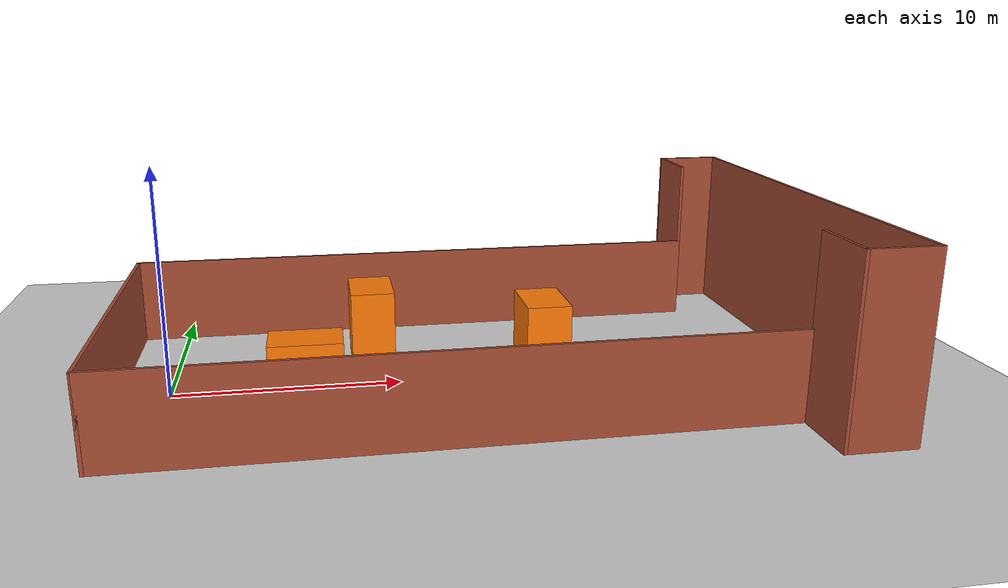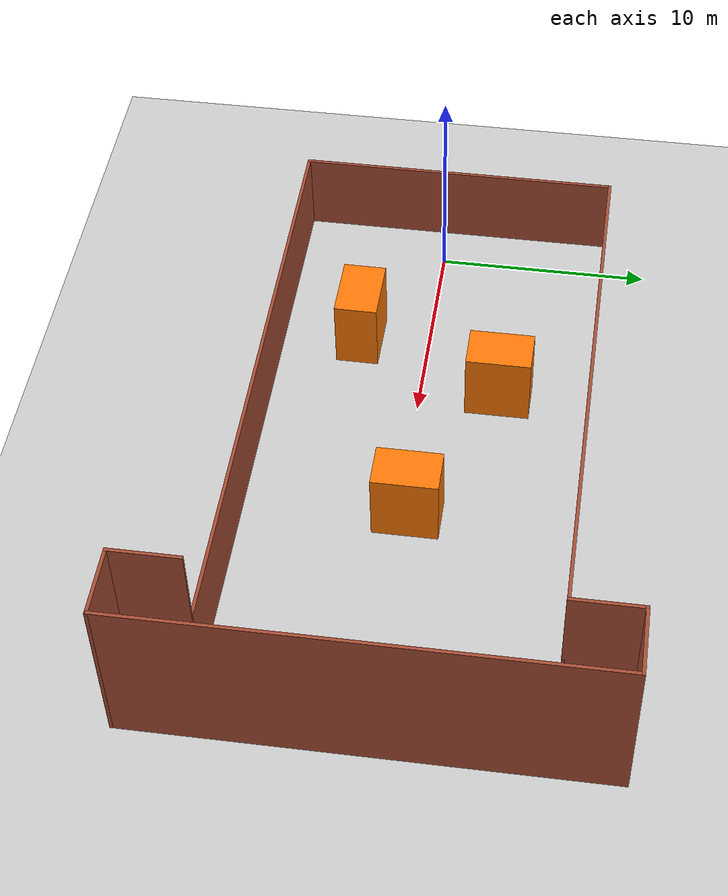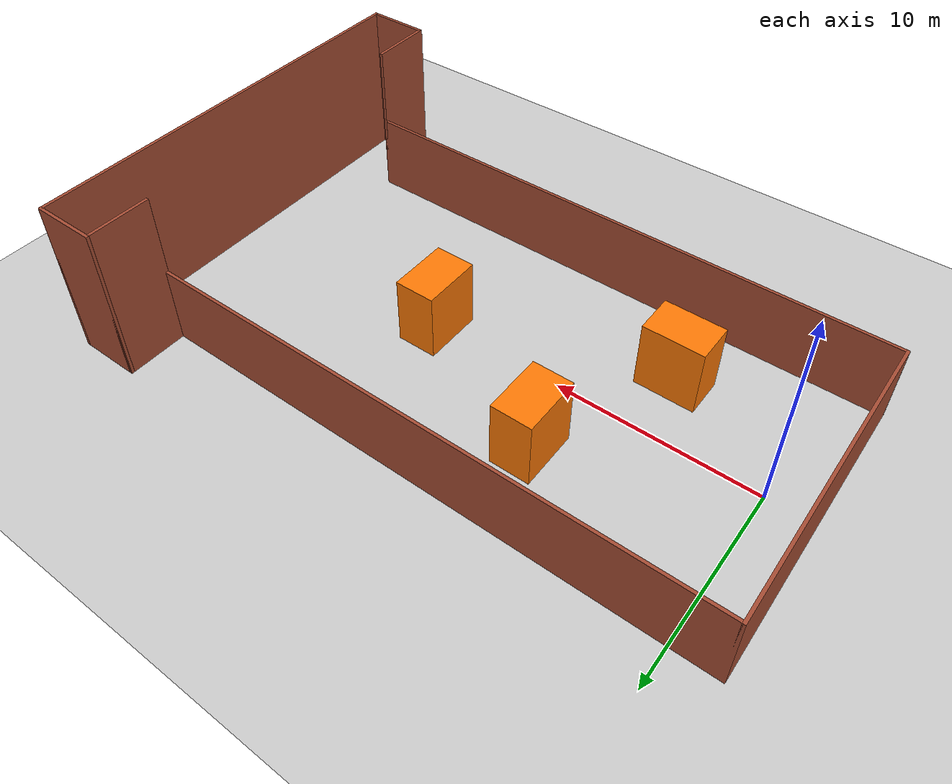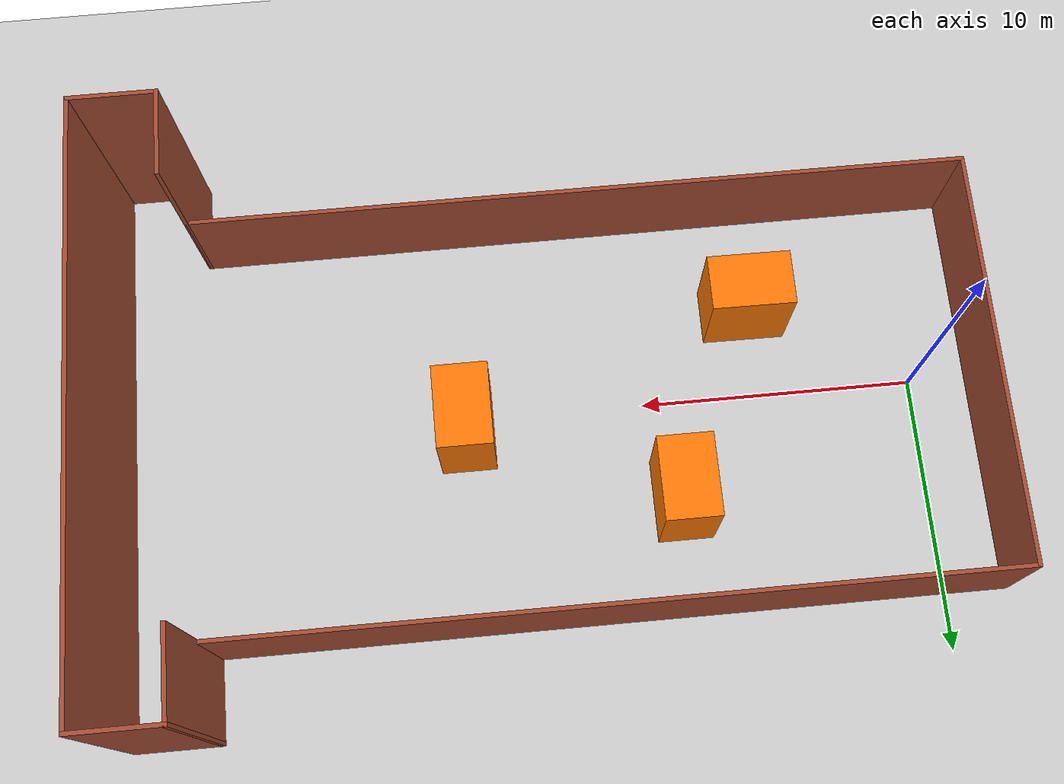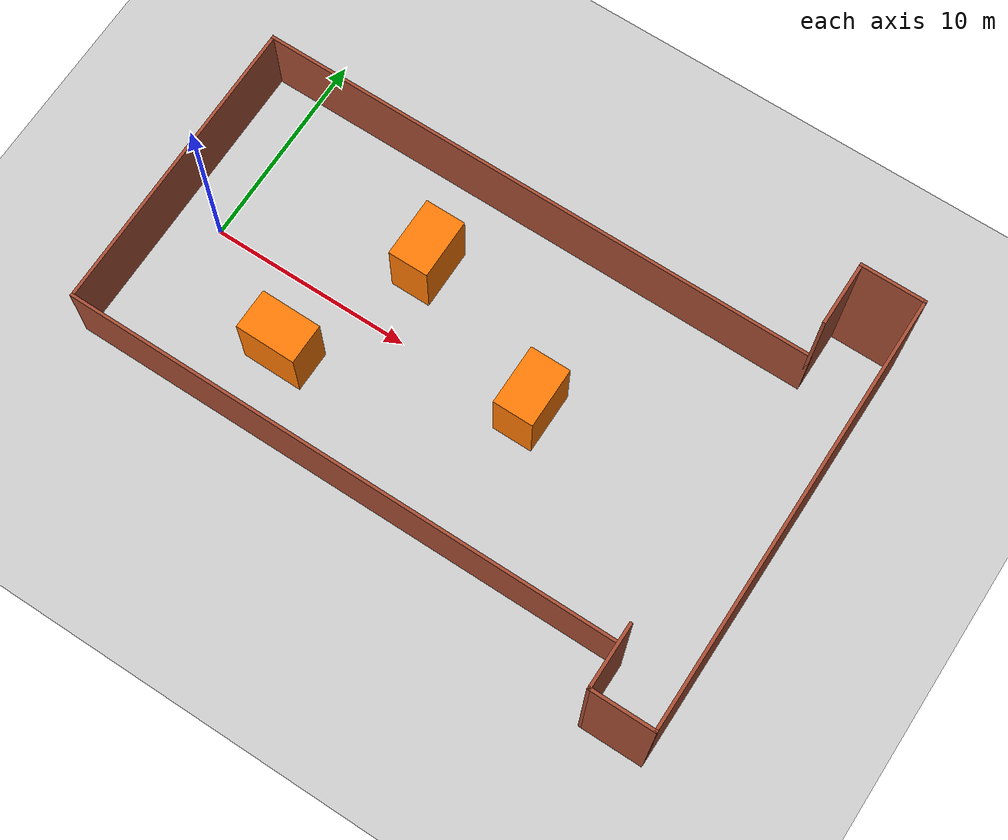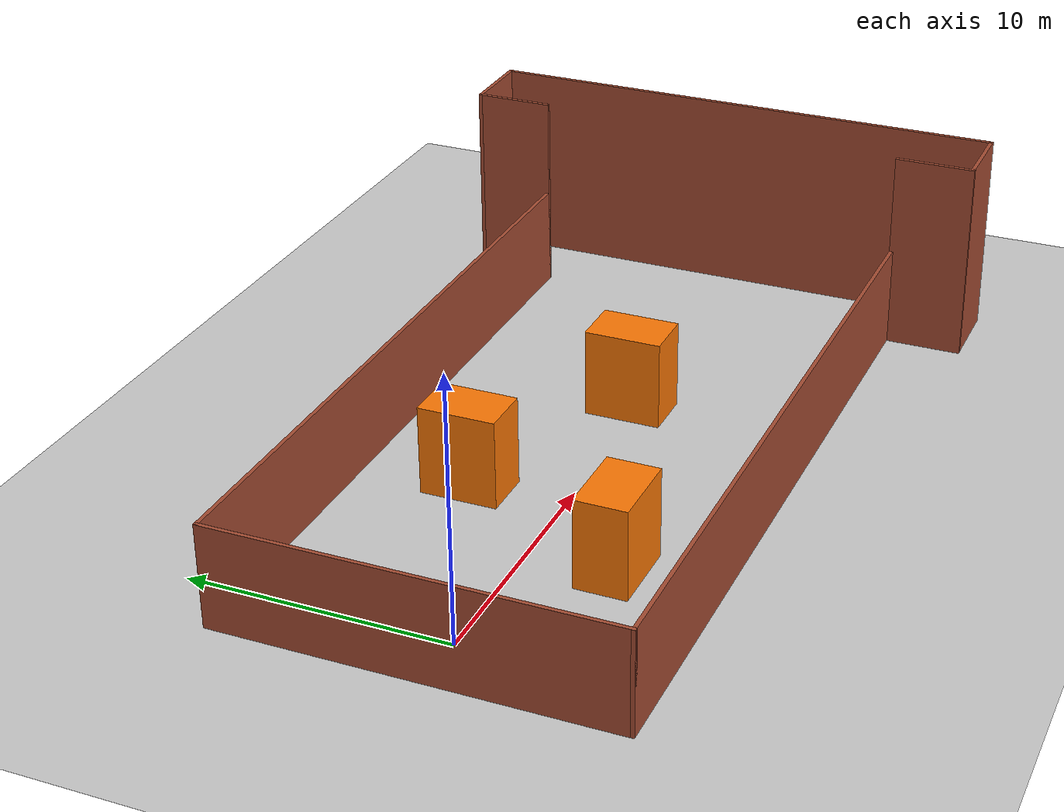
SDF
<sdf version="1.7">
 <world name="default">
  <light name="sun" type="directional">
   <pose>0 0 10 0 -0 0</pose>
   <diffuse>0.8 0.8 0.8 1</diffuse>
   <specular>0.2 0.2 0.2 1</specular>
   <attenuation>
    <range>1000</range>
    <constant>0.9</constant>
    <linear>0.01</linear>
    <quadratic>0.001</quadratic>
   </attenuation>
   <direction>-0.5 0.1 -0.9</direction>
   <spot><inner_angle>0</inner_angle><outer_angle>0</outer_angle><falloff>0</falloff></spot>
  </light>
  <model name="ground_plane">
   <static>1</static>
   <link name="link">
    <collision name="collision">
     <geometry><plane><normal>0 0 1</normal><size>100 100</size></plane></geometry>
     <surface>
      <contact><collide_bitmask>65535</collide_bitmask></contact>
      <friction><ode><mu>100</mu><mu2>50</mu2></ode></friction>
     </surface>
    </collision>
    <visual name="visual">
     <cast_shadows>0</cast_shadows>
     <geometry><plane><normal>0 0 1</normal><size>100 100</size></plane></geometry>
     <material>
      <script><uri>file://media/materials/scripts/gazebo.material</uri><name>Gazebo/Grey</name></script>
     </material>
    </visual>
   </link>
  </model>
  <gravity>0 0 -9.8</gravity>
  <magnetic_field>6e-06 2.3e-05 -4.2e-05</magnetic_field>
  <atmosphere type="adiabatic"/>
  <physics type="ode">
   <max_step_size>0.001</max_step_size>
   <real_time_factor>1</real_time_factor>
   <real_time_update_rate>1000</real_time_update_rate>
  </physics>
  <scene><ambient>0.4 0.4 0.4 1</ambient><background>0.7 0.7 0.7 1</background><shadows>1</shadows></scene>
  <spherical_coordinates>
   <surface_model>EARTH_WGS84</surface_model>
   <latitude_deg>0</latitude_deg>
   <longitude_deg>0</longitude_deg>
   <elevation>0</elevation>
   <heading_deg>0</heading_deg>
  </spherical_coordinates>
  <model name="floorplan3">
   <pose>13.3043 0.422986 0 0 -0 0</pose>
   <link name="Wall_0">
    <collision name="Wall_0_Collision">
     <geometry><box><size>15.15 0.15 4</size></box></geometry>
     <pose>0 0 2 0 -0 0</pose>
    </collision>
    <visual name="Wall_0_Visual">
     <pose>0 0 2 0 -0 0</pose>
     <geometry><box><size>15.15 0.15 4</size></box></geometry>
     <material>
      <script><uri>file://media/materials/scripts/gazebo.material</uri><name>Gazebo/Bricks</name></script>
      <ambient>1 1 1 1</ambient>
     </material>
     <meta><layer>0</layer></meta>
    </visual>
    <pose>-15.5 0 0 0 -0 1.5708</pose>
   </link>
   <link name="Wall_10">
    <collision name="Wall_10_Collision">
     <geometry><box><size>3.15 0.15 8</size></box></geometry>
     <pose>0 0 4 0 -0 0</pose>
    </collision>
    <visual name="Wall_10_Visual">
     <pose>0 0 4 0 -0 0</pose>
     <geometry><box><size>3.15 0.15 8</size></box></geometry>
     <material>
      <script><uri>file://media/materials/scripts/gazebo.material</uri><name>Gazebo/Bricks</name></script>
      <ambient>1 1 1 1</ambient>
     </material>
     <meta><layer>0</layer></meta>
    </visual>
    <pose>14 10.5 0 0 -0 0</pose>
   </link>
   <link name="Wall_11">
    <collision name="Wall_11_Collision">
     <geometry><box><size>21.15 0.15 8</size></box></geometry>
     <pose>0 0 4 0 -0 0</pose>
    </collision>
    <visual name="Wall_11_Visual">
     <pose>0 0 4 0 -0 0</pose>
     <geometry><box><size>21.15 0.15 8</size></box></geometry>
     <material>
      <script><uri>file://media/materials/scripts/gazebo.material</uri><name>Gazebo/Bricks</name></script>
      <ambient>1 1 1 1</ambient>
     </material>
     <meta><layer>0</layer></meta>
    </visual>
    <pose>15.5 0 0 0 -0 -1.5708</pose>
   </link>
   <link name="Wall_12">
    <collision name="Wall_12_Collision">
     <geometry><box><size>3.15 0.15 8</size></box></geometry>
     <pose>0 0 4 0 -0 0</pose>
    </collision>
    <visual name="Wall_12_Visual">
     <pose>0 0 4 0 -0 0</pose>
     <geometry><box><size>3.15 0.15 8</size></box></geometry>
     <material>
      <script><uri>file://media/materials/scripts/gazebo.material</uri><name>Gazebo/Bricks</name></script>
      <ambient>1 1 1 1</ambient>
     </material>
     <meta><layer>0</layer></meta>
    </visual>
    <pose>14 -10.5 0 0 -0 3.14159</pose>
   </link>
   <link name="Wall_2">
    <collision name="Wall_2_Collision">
     <geometry><box><size>28.15 0.15 4</size></box></geometry>
     <pose>0 0 2 0 -0 0</pose>
    </collision>
    <visual name="Wall_2_Visual">
     <pose>0 0 2 0 -0 0</pose>
     <geometry><box><size>28.15 0.15 4</size></box></geometry>
     <material>
      <script><uri>file://media/materials/scripts/gazebo.material</uri><name>Gazebo/Bricks</name></script>
      <ambient>1 1 1 1</ambient>
     </material>
     <meta><layer>0</layer></meta>
    </visual>
    <pose>-1.5 -7.5 0 0 -0 0</pose>
   </link>
   <link name="Wall_4">
    <collision name="Wall_4_Collision">
     <geometry><box><size>28.15 0.15 4</size></box></geometry>
     <pose>0 0 2 0 -0 0</pose>
    </collision>
    <visual name="Wall_4_Visual">
     <pose>0 0 2 0 -0 0</pose>
     <geometry><box><size>28.15 0.15 4</size></box></geometry>
     <material>
      <script><uri>file://media/materials/scripts/gazebo.material</uri><name>Gazebo/Bricks</name></script>
      <ambient>1 1 1 1</ambient>
     </material>
     <meta><layer>0</layer></meta>
    </visual>
    <pose>-1.5 7.5 0 0 -0 0</pose>
   </link>
   <link name="Wall_6">
    <collision name="Wall_6_Collision">
     <geometry><box><size>3.15 0.15 8</size></box></geometry>
     <pose>0 0 4 0 -0 0</pose>
    </collision>
    <visual name="Wall_6_Visual">
     <pose>0 0 4 0 -0 0</pose>
     <geometry><box><size>3.15 0.15 8</size></box></geometry>
     <material>
      <script><uri>file://media/materials/scripts/gazebo.material</uri><name>Gazebo/Bricks</name></script>
      <ambient>1 1 1 1</ambient>
     </material>
     <meta><layer>0</layer></meta>
    </visual>
    <pose>12.5 9 0 0 -0 -1.5708</pose>
   </link>
   <link name="Wall_8">
    <collision name="Wall_8_Collision">
     <geometry><box><size>3.15 0.15 8</size></box></geometry>
     <pose>0 0 4 0 -0 0</pose>
    </collision>
    <visual name="Wall_8_Visual">
     <pose>0 0 4 0 -0 0</pose>
     <geometry><box><size>3.15 0.15 8</size></box></geometry>
     <material>
      <script><uri>file://media/materials/scripts/gazebo.material</uri><name>Gazebo/Bricks</name></script>
      <ambient>1 1 1 1</ambient>
     </material>
     <meta><layer>0</layer></meta>
    </visual>
    <pose>12.5 -9 0 0 -0 -1.5708</pose>
   </link>
   <static>1</static>
  </model>
  <model name="box3_2_3.5">
   <pose>8.9552 3.69167 0 0 -0 0</pose>
   <link name="Wall_7">
    <collision name="Wall_7_Collision">
     <geometry><box><size>3 2 3.5</size></box></geometry>
     <pose>0 0 1.75 0 -0 0</pose>
    </collision>
    <visual name="Wall_7_Visual">
     <pose>0 0 1.75 0 -0 0</pose>
     <geometry><box><size>3 2 3.5</size></box></geometry>
     <material>
      <script><uri>file://media/materials/scripts/gazebo.material</uri><name>Gazebo/Grey</name></script>
      <ambient>0.996078 0.47451 0.0196078 1</ambient>
     </material>
     <meta><layer>0</layer></meta>
    </visual>
    <pose>0 0 0 0 -0 1.5708</pose>
   </link>
   <static>1</static>
  </model>
  <model name="box3_2_3.5_0">
   <pose>16.5346 0.419352 0 0 -0 0</pose>
   <link name="Wall_7">
    <collision name="Wall_7_Collision">
     <geometry><box><size>3 2 3.5</size></box></geometry>
     <pose>0 0 1.75 0 -0 0</pose>
    </collision>
    <visual name="Wall_7_Visual">
     <pose>0 0 1.75 0 -0 0</pose>
     <geometry><box><size>3 2 3.5</size></box></geometry>
     <material>
      <script><uri>file://media/materials/scripts/gazebo.material</uri><name>Gazebo/Grey</name></script>
      <ambient>0.996078 0.47451 0.0196078 1</ambient>
     </material>
     <meta><layer>0</layer></meta>
    </visual>
    <pose>0 0 0 0 -0 1.5708</pose>
   </link>
   <static>1</static>
  </model>
  <model name="box3_2_3.5_1">
   <pose>5.90505 -3.27694 0 0 0 -1.5777</pose>
   <link name="Wall_7">
    <collision name="Wall_7_Collision">
     <geometry><box><size>3 2 3.5</size></box></geometry>
     <pose>0 0 1.75 0 -0 0</pose>
    </collision>
    <visual name="Wall_7_Visual">
     <pose>0 0 1.75 0 -0 0</pose>
     <geometry><box><size>3 2 3.5</size></box></geometry>
     <material>
      <script><uri>file://media/materials/scripts/gazebo.material</uri><name>Gazebo/Grey</name></script>
      <ambient>0.996078 0.47451 0.0196078 1</ambient>
     </material>
     <meta><layer>0</layer></meta>
    </visual>
    <pose>0 0 0 0 -0 1.5708</pose>
   </link>
   <static>1</static>
  </model>
 </world>
</sdf>
